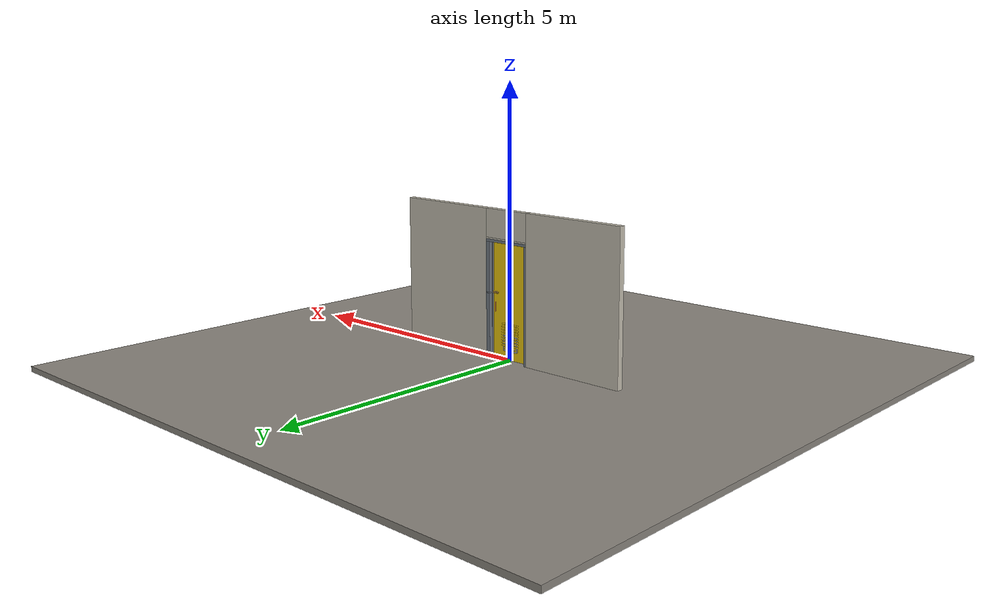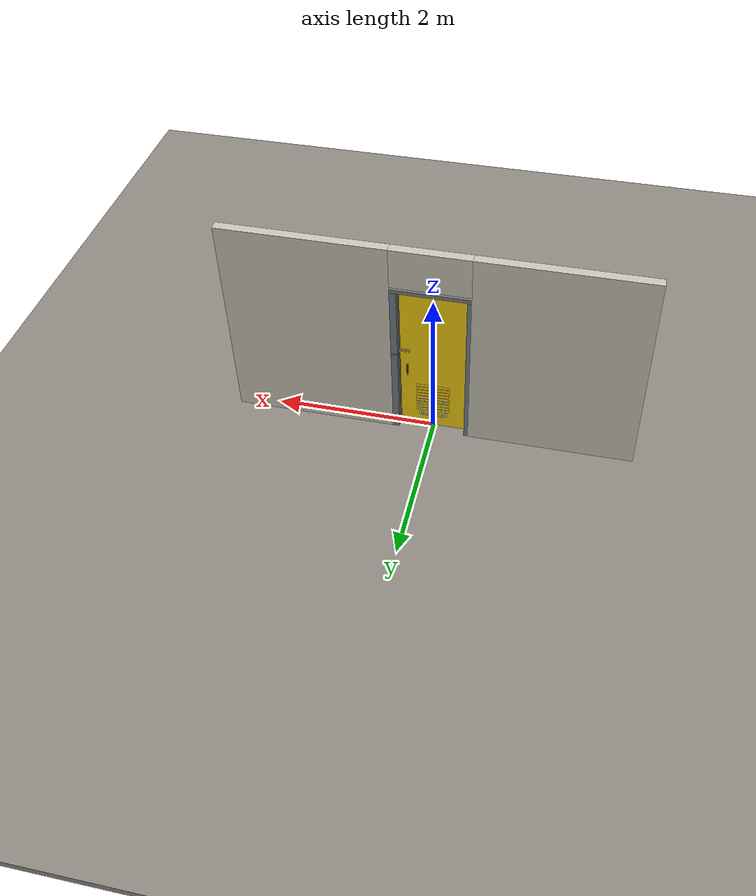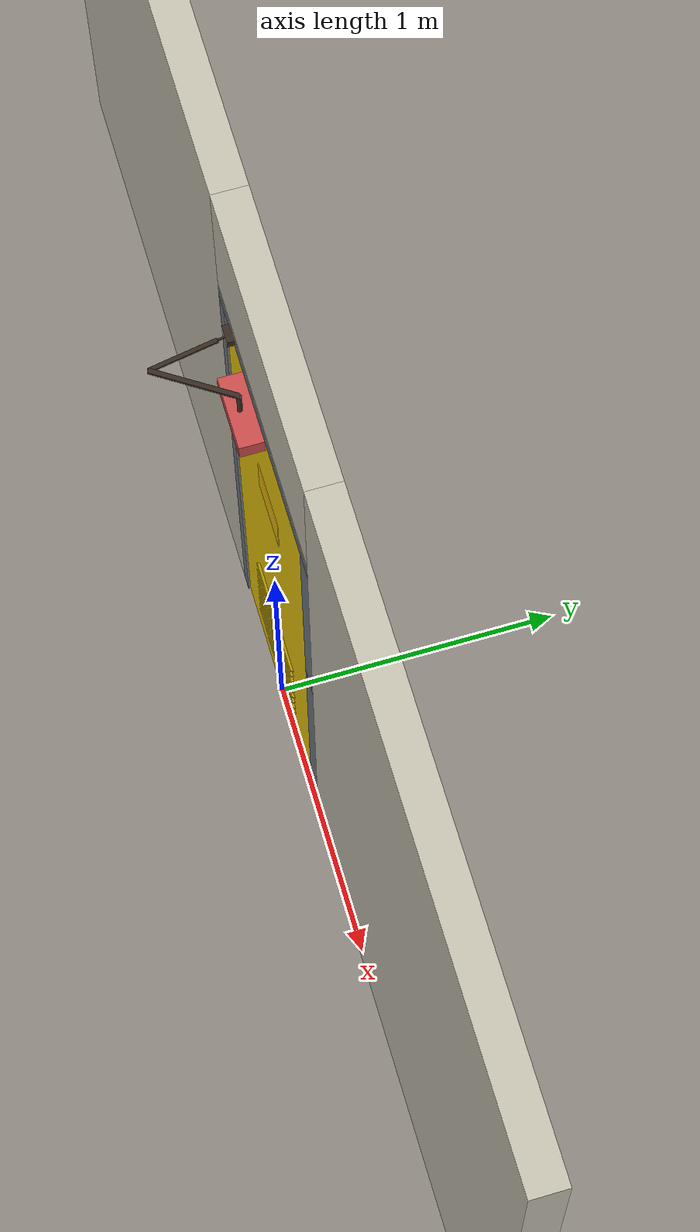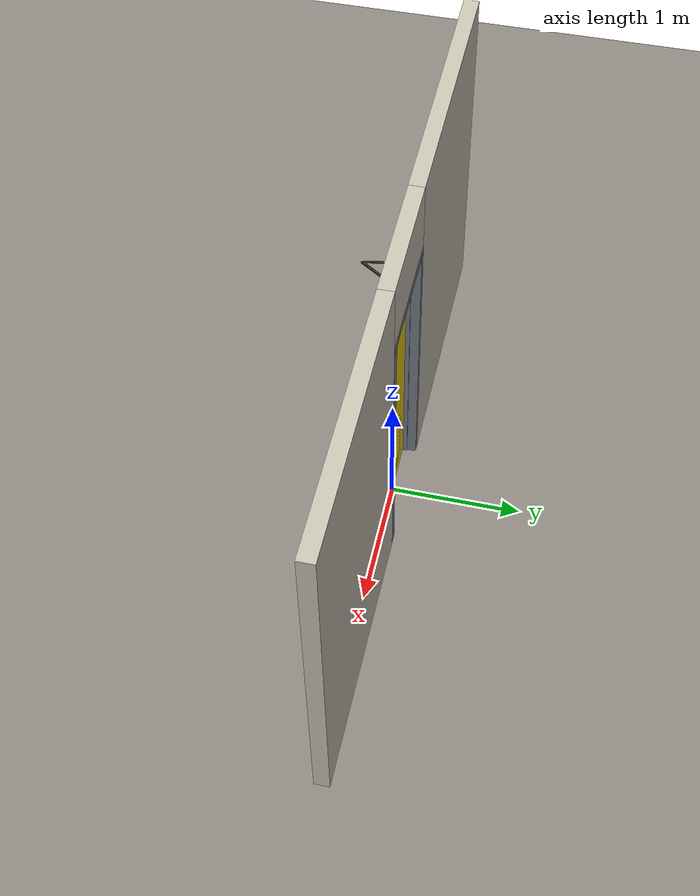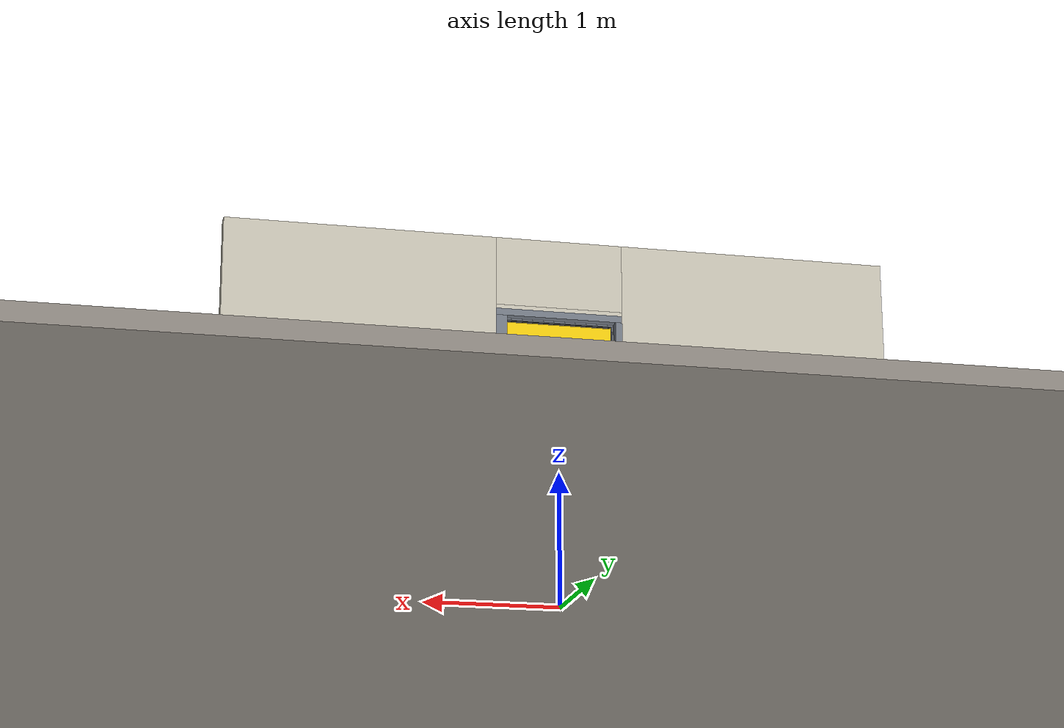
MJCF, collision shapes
<?xml version="1.0" ?>
<mujoco model="db0012_swing_single_full">
  <compiler angle="radian" meshdir="../../hardware" texturedir="../../textures" autolimits="true" inertiafromgeom="false"/>
  <option timestep="0.002" integrator="implicitfast" cone="elliptic" impratio="10" noslip_iterations="3">
    <flag multiccd="enable"/>
  </option>
  <size memory="16M"/>
  <default>
    <geom condim="4" solref="0.005 1" solimp="0.95 0.99 0.001"/>
    <joint solreflimit="0.005 1" solimplimit="0.95 0.99 0.001"/>
    <tendon solreflimit="0.005 1"/>
    <equality solref="0.002 1"/>
  </default>
  <visual>
    <headlight ambient="0.4 0.4 0.4" diffuse="0.7 0.7 0.7" specular="0.2 0.2 0.2"/>
    <quality shadowsize="4096"/>
    <map znear="0.01" zfar="60"/>
  </visual>
  <asset>
    <mesh name="closer_body_b226fdb10b" file="closer_body_b226fdb10b.obj"/>
    <mesh name="hinge_6a70328eaf" file="hinge_6a70328eaf.obj"/>
    <mesh name="hinge_jamb_2905960ffb" file="hinge_jamb_2905960ffb.obj"/>
    <mesh name="pull_1e5d69a91a" file="pull_1e5d69a91a.obj"/>
    <material name="mat_floor" rgba="0.55 0.53 0.5 1" specular="0.2" shininess="0.15" reflectance="0"/>
    <material name="mat_wall" rgba="0.78 0.76 0.7 1" specular="0.2" shininess="0.1" reflectance="0"/>
    <material name="mat_leaf" rgba="0.95 0.8 0.05 1" specular="0.23" shininess="0.44" reflectance="0.02"/>
    <material name="mat_leaf_louver" rgba="0.807 0.68 0.043 1" specular="0.2" shininess="0.4" reflectance="0"/>
    <material name="mat_hinge" rgba="0.45 0.3 0.22 1" specular="0.5" shininess="0.1" reflectance="0.2"/>
    <material name="mat_op_stainless" rgba="0.75 0.76 0.77 1" specular="0.8" shininess="0.65" reflectance="0.4"/>
    <material name="mat_op_brass" rgba="0.85 0.66 0.3 1" specular="0.8" shininess="0.75" reflectance="0.4"/>
    <material name="mat_frame" rgba="0.45 0.48 0.52 1" specular="0.32" shininess="0.6" reflectance="0.08"/>
    <material name="mat_seal" rgba="0.1 0.1 0.1 1" specular="0.2" shininess="0.1" reflectance="0"/>
    <material name="mat_closer" rgba="0.22 0.17 0.13 1" specular="0.8" shininess="0.6" reflectance="0.4"/>
    <material name="mat_vent" rgba="0.8 0.81 0.83 1" specular="0.8" shininess="0.6" reflectance="0.4"/>
    <material name="mat_placard" rgba="0.95 0.75 0.05 1" specular="0.2" shininess="0.5" reflectance="0"/>
    <texture name="skybox" type="skybox" builtin="gradient" rgb1="0.6 0.7 0.85" rgb2="0.9 0.92 0.95" width="256" height="256"/>
  </asset>
  <worldbody>
    <light name="sun" pos="1.5 -2.5 4" dir="-0.3 0.5 -0.8" directional="true" diffuse="0.8 0.8 0.8" specular="0.3 0.3 0.3" castshadow="true"/>
    <light name="fill" pos="-1.5 2.5 3" dir="0.3 -0.5 -0.7" directional="true" diffuse="0.35 0.35 0.4" castshadow="false"/>
    <camera name="robot_view" pos="0 -2.590313 1.812087" xyaxes="1 0 0 0 0.26963 0.962964" fovy="52"/>
    <camera name="far_view" pos="0 2.685312 1.812087" xyaxes="-1 0 0 0 -0.26963 0.962964" fovy="52"/>
    <camera name="iso" pos="2.004737 -2.168262 2.234138" xyaxes="0.741536 0.670913 0 -0.242917 0.268487 0.932151" fovy="46"/>
    <camera name="detail_handle" pos="0.4815 -0.863 1.245" xyaxes="0.97561 0.219512 0 -0.070934 0.315262 0.94635" fovy="38"/>
    <geom name="floor" type="box" size="6 6 0.05" pos="0 0 -0.05" material="mat_floor" group="0" contype="1" conaffinity="1" friction="0.8 0.005 0.0001" density="2400"/>
    <geom name="wall_left" type="box" size="1.02025 0.0575 1.3735" pos="-1.47975 0.0475 1.3735" material="mat_wall" group="0" contype="1" conaffinity="1" friction="0.6 0.005 0.0001" density="800"/>
    <geom name="wall_right" type="box" size="1.00525 0.0575 1.3735" pos="1.49475 0.0475 1.3735" material="mat_wall" group="0" contype="1" conaffinity="1" friction="0.6 0.005 0.0001" density="800"/>
    <geom name="wall_header" type="box" size="0.4745 0.0575 0.26" pos="0.015 0.0475 2.487" material="mat_wall" group="0" contype="1" conaffinity="1" friction="0.6 0.005 0.0001" density="800"/>
    <geom name="hinge_0_jamb" type="mesh" mesh="hinge_jamb_2905960ffb" pos="-0.4065 -0.01 0.259" material="mat_hinge" group="1" contype="0" conaffinity="0" density="7850"/>
    <geom name="hinge_1_jamb" type="mesh" mesh="hinge_jamb_2905960ffb" pos="-0.4065 -0.01 1.076" material="mat_hinge" group="1" contype="0" conaffinity="0" density="7850"/>
    <geom name="hinge_2_jamb" type="mesh" mesh="hinge_jamb_2905960ffb" pos="-0.4065 -0.01 1.963" material="mat_hinge" group="1" contype="0" conaffinity="0" density="7850"/>
    <geom name="leaf_aux_bolt_keeper_b" type="box" size="0.014 0.003 0.0005" pos="0.409 0.015 1.202" quat="-0.5 -0.5 0.5 0.5" material="mat_op_brass" group="1" contype="0" conaffinity="0" density="7800"/>
    <geom name="leaf_aux_bolt_keeper_l" type="box" size="0.003 0.01 0.0005" pos="0.409 0.026 1.215" quat="-0.5 -0.5 0.5 0.5" material="mat_op_brass" group="1" contype="0" conaffinity="0" density="7800"/>
    <geom name="leaf_aux_bolt_keeper_t" type="box" size="0.014 0.003 0.0005" pos="0.409 0.015 1.228" quat="-0.5 -0.5 0.5 0.5" material="mat_op_brass" group="1" contype="0" conaffinity="0" density="7800"/>
    <geom name="leaf_aux_bolt_keeper_r" type="box" size="0.003 0.01 0.0005" pos="0.409 0.004 1.215" quat="-0.5 -0.5 0.5 0.5" material="mat_op_brass" group="1" contype="0" conaffinity="0" density="7800"/>
    <geom name="jamb_hinge" type="box" size="0.025 0.0575 1.0735" pos="-0.4345 0.0475 1.0735" material="mat_frame" group="0" contype="1" conaffinity="1" friction="0.6 0.005 0.0001" density="300"/>
    <geom name="strike_1215_wall_n" type="box" size="0.04 0.041 0.01" pos="0.4495 0.064 1.215" material="mat_frame" group="0" contype="1" conaffinity="1" friction="0.6 0.005 0.0001" density="300"/>
    <geom name="strike_1215_wall_p" type="box" size="0.04 0.0085 0.01" pos="0.4495 -0.0015 1.215" material="mat_frame" group="0" contype="1" conaffinity="1" friction="0.6 0.005 0.0001" density="300"/>
    <geom name="strike_1215_back" type="box" size="0.019 0.008 0.01" pos="0.4705 0.015 1.215" material="mat_frame" group="0" contype="1" conaffinity="1" friction="0.6 0.005 0.0001" density="300"/>
    <geom name="jamb_strike_0" type="box" size="0.04 0.0575 0.6025" pos="0.4495 0.0475 0.6025" material="mat_frame" group="0" contype="1" conaffinity="1" friction="0.6 0.005 0.0001" density="300"/>
    <geom name="jamb_strike_1" type="box" size="0.04 0.0575 0.461" pos="0.4495 0.0475 1.686" material="mat_frame" group="0" contype="1" conaffinity="1" friction="0.6 0.005 0.0001" density="300"/>
    <geom name="jamb_head" type="box" size="0.4745 0.0575 0.025" pos="0.015 0.0475 2.172" material="mat_frame" group="0" contype="1" conaffinity="1" friction="0.6 0.005 0.0001" density="300"/>
    <geom name="head_stud" type="box" size="0.4745 0.0575 0.015" pos="0.015 0.0475 2.212" material="mat_wall" group="0" contype="1" conaffinity="1" friction="0.6 0.005 0.0001" density="500"/>
    <geom name="stop_hinge" type="box" size="0.0055 0.016 1.0735" pos="-0.404 0.0195 1.0735" material="mat_frame" group="0" contype="1" conaffinity="1" friction="0.6 0.005 0.0001" density="300"/>
    <geom name="stop_strike" type="box" size="0.0055 0.016 0.5965" pos="0.404 0.0195 0.5965" material="mat_frame" group="0" contype="1" conaffinity="1" friction="0.6 0.005 0.0001" density="300"/>
    <geom name="stop_strike_1" type="box" size="0.0055 0.016 0.455" pos="0.404 0.0195 1.692" material="mat_frame" group="0" contype="1" conaffinity="1" friction="0.6 0.005 0.0001" density="300"/>
    <geom name="stop_head" type="box" size="0.4095 0.016 0.0055" pos="0 0.0195 2.1415" material="mat_frame" group="0" contype="1" conaffinity="1" friction="0.6 0.005 0.0001" density="300"/>
    <geom name="seal_hinge" type="box" size="0.004 0.004 1.0735" pos="-0.4065 0.007 1.0735" material="mat_seal" group="1" contype="0" conaffinity="0" density="1100"/>
    <geom name="seal_strike" type="box" size="0.004 0.004 0.5965" pos="0.4065 0.007 0.5965" material="mat_seal" group="1" contype="0" conaffinity="0" density="1100"/>
    <geom name="seal_strike_1" type="box" size="0.004 0.004 0.455" pos="0.4065 0.007 1.692" material="mat_seal" group="1" contype="0" conaffinity="0" density="1100"/>
    <geom name="seal_head" type="box" size="0.3895 0.004 0.008" pos="0 0.007 2.135" material="mat_seal" group="1" contype="0" conaffinity="0" density="1100"/>
    <geom name="closer_bracket" type="box" size="0.03 0.012 0.014" pos="-0.3095 -0.022 2.177" material="mat_closer" group="1" contype="0" conaffinity="0" density="2700"/>
    <site name="approach_point" pos="0 -1.5 0" quat="1 0 0 0" size="0.05" rgba="0.2 0.9 0.2 0.5" group="4"/>
    <site name="goal_point" pos="0 1.5 0" quat="1 0 0 0" size="0.05" rgba="0.2 0.9 0.2 0.5" group="4"/>
    <site name="door_plane_center" pos="0 0 1.0735" quat="1 0 0 0" size="0.02" rgba="0.2 0.9 0.2 0.5" group="4"/>
    <body name="leaf" pos="-0.4095 0 0">
      <inertial pos="0.401395 -0.003794 1.152612" mass="86.286493" quat="-0.497424 0.490282 0.505653 0.506467" diaginertia="4.494990443 36.530342113 40.990895979"/>
      <joint name="leaf_hinge" type="hinge" axis="0 0 -1" pos="0.003 -0.01 0" limited="true" range="0 1.745329" solreflimit="0.02 1" damping="10.168374" frictionloss="30.751442" stiffness="14.763213" springref="-3.207974" armature="0.02"/>
      <geom name="leaf_slab" type="box" size="0.4065 0.003 1.067" pos="0.4095 0 1.076" material="mat_leaf" group="0" contype="1" conaffinity="1" friction="0.45 0.005 0.0001" density="1"/>
      <geom name="leaf_louver_0" type="box" size="0.20325 0.002 0.02625" pos="0.4095 0 0.284" quat="0.953717 0.300706 0 0" material="mat_leaf_louver" group="1" contype="0" conaffinity="0" density="1"/>
      <geom name="leaf_louver_1" type="box" size="0.20325 0.002 0.02625" pos="0.4095 0 0.334" quat="0.953717 0.300706 0 0" material="mat_leaf_louver" group="1" contype="0" conaffinity="0" density="1"/>
      <geom name="leaf_louver_2" type="box" size="0.20325 0.002 0.02625" pos="0.4095 0 0.384" quat="0.953717 0.300706 0 0" material="mat_leaf_louver" group="1" contype="0" conaffinity="0" density="1"/>
      <geom name="leaf_louver_3" type="box" size="0.20325 0.002 0.02625" pos="0.4095 0 0.434" quat="0.953717 0.300706 0 0" material="mat_leaf_louver" group="1" contype="0" conaffinity="0" density="1"/>
      <geom name="leaf_louver_4" type="box" size="0.20325 0.002 0.02625" pos="0.4095 0 0.484" quat="0.953717 0.300706 0 0" material="mat_leaf_louver" group="1" contype="0" conaffinity="0" density="1"/>
      <geom name="leaf_louver_5" type="box" size="0.20325 0.002 0.02625" pos="0.4095 0 0.534" quat="0.953717 0.300706 0 0" material="mat_leaf_louver" group="1" contype="0" conaffinity="0" density="1"/>
      <geom name="leaf_louver_6" type="box" size="0.20325 0.002 0.02625" pos="0.4095 0 0.584" quat="0.953717 0.300706 0 0" material="mat_leaf_louver" group="1" contype="0" conaffinity="0" density="1"/>
      <geom name="leaf_louver_7" type="box" size="0.20325 0.002 0.02625" pos="0.4095 0 0.634" quat="0.953717 0.300706 0 0" material="mat_leaf_louver" group="1" contype="0" conaffinity="0" density="1"/>
      <geom name="leaf_louver_8" type="box" size="0.20325 0.002 0.02625" pos="0.4095 0 0.684" quat="0.953717 0.300706 0 0" material="mat_leaf_louver" group="1" contype="0" conaffinity="0" density="1"/>
      <geom name="hinge_0" type="mesh" mesh="hinge_6a70328eaf" pos="0.003 -0.01 0.259" material="mat_hinge" group="1" contype="0" conaffinity="0" density="7850"/>
      <geom name="hinge_1" type="mesh" mesh="hinge_6a70328eaf" pos="0.003 -0.01 1.076" material="mat_hinge" group="1" contype="0" conaffinity="0" density="7850"/>
      <geom name="hinge_2" type="mesh" mesh="hinge_6a70328eaf" pos="0.003 -0.01 1.963" material="mat_hinge" group="1" contype="0" conaffinity="0" density="7850"/>
      <geom name="leaf_pull_n" type="mesh" mesh="pull_1e5d69a91a" pos="0.711 -0.003 0.965" quat="0.707107 0.707107 0 0" material="mat_op_stainless" group="1" contype="0" conaffinity="0" density="3000"/>
      <geom name="leaf_pull_col_n" type="capsule" size="0.0095 0.08" pos="0.711 -0.063 0.965" material="mat_op_stainless" group="3" contype="1" conaffinity="1" rgba="0.8 0.3 0.3 0.25" friction="0.7 0.01 0.0001" density="3000"/>
      <geom name="leaf_pull_p" type="mesh" mesh="pull_1e5d69a91a" pos="0.711 0.003 0.965" quat="-0.707107 0.707107 0 0" material="mat_op_stainless" group="1" contype="0" conaffinity="0" density="3000"/>
      <geom name="leaf_pull_col_p" type="capsule" size="0.0095 0.08" pos="0.711 0.063 0.965" material="mat_op_stainless" group="3" contype="1" conaffinity="1" rgba="0.8 0.3 0.3 0.25" friction="0.7 0.01 0.0001" density="3000"/>
      <geom name="leaf_aux_bolt_plate" type="box" size="0.0595 0.019 0.001" pos="0.7485 0.004 1.215" quat="0.707107 -0.707107 0 0" material="mat_op_brass" group="1" contype="0" conaffinity="0" density="7800"/>
      <geom name="leaf_aux_bolt_guide_0_leg_n" type="box" size="0.006 0.002 0.0125" pos="0.8 0.0155 1.226" quat="0.707107 -0.707107 0 0" material="mat_op_brass" group="1" contype="0" conaffinity="0" density="7800"/>
      <geom name="leaf_aux_bolt_guide_0_leg_p" type="box" size="0.006 0.002 0.0125" pos="0.8 0.0155 1.204" quat="0.707107 -0.707107 0 0" material="mat_op_brass" group="1" contype="0" conaffinity="0" density="7800"/>
      <geom name="leaf_aux_bolt_guide_0_bridge" type="box" size="0.006 0.013 0.002" pos="0.8 0.026 1.215" quat="0.707107 -0.707107 0 0" material="mat_op_brass" group="1" contype="0" conaffinity="0" density="7800"/>
      <geom name="leaf_aux_bolt_guide_1_leg_n" type="box" size="0.006 0.002 0.0125" pos="0.699 0.0155 1.226" quat="0.707107 -0.707107 0 0" material="mat_op_brass" group="1" contype="0" conaffinity="0" density="7800"/>
      <geom name="leaf_aux_bolt_guide_1_leg_p" type="box" size="0.006 0.002 0.0125" pos="0.699 0.0155 1.204" quat="0.707107 -0.707107 0 0" material="mat_op_brass" group="1" contype="0" conaffinity="0" density="7800"/>
      <geom name="leaf_aux_bolt_guide_1_bridge" type="box" size="0.006 0.013 0.002" pos="0.699 0.026 1.215" quat="0.707107 -0.707107 0 0" material="mat_op_brass" group="1" contype="0" conaffinity="0" density="7800"/>
      <geom name="closer_body" type="mesh" mesh="closer_body_b226fdb10b" pos="0.3 -0.003 2.054" quat="0.707107 0.707107 0 0" material="mat_closer" group="1" contype="0" conaffinity="0" density="2000"/>
      <geom name="closer_body_col" type="box" size="0.12 0.04 0.03" pos="0.3 -0.043 2.054" material="mat_closer" group="3" contype="1" conaffinity="1" rgba="0.8 0.3 0.3 0.25" friction="0.6 0.005 0.0001" density="2000"/>
      <geom name="closer_pinion_shaft" type="cylinder" size="0.008 0.0615" pos="0.3 -0.045 2.1155" material="mat_closer" group="1" contype="0" conaffinity="0" density="2700"/>
      <geom name="louver_vent_stile_n_l" type="box" size="0.012 0.002 0.137" pos="0.2475 -0.005 0.314" material="mat_vent" group="2" contype="0" conaffinity="0" density="2700"/>
      <geom name="louver_vent_stile_n_r" type="box" size="0.012 0.002 0.137" pos="0.5715 -0.005 0.314" material="mat_vent" group="2" contype="0" conaffinity="0" density="2700"/>
      <geom name="louver_vent_rail_n_b" type="box" size="0.15 0.002 0.012" pos="0.4095 -0.005 0.177" material="mat_vent" group="2" contype="0" conaffinity="0" density="2700"/>
      <geom name="louver_vent_rail_n_t" type="box" size="0.15 0.002 0.012" pos="0.4095 -0.005 0.451" material="mat_vent" group="2" contype="0" conaffinity="0" density="2700"/>
      <geom name="louver_vent_stile_p_l" type="box" size="0.012 0.002 0.137" pos="0.2475 0.005 0.314" material="mat_vent" group="2" contype="0" conaffinity="0" density="2700"/>
      <geom name="louver_vent_stile_p_r" type="box" size="0.012 0.002 0.137" pos="0.5715 0.005 0.314" material="mat_vent" group="2" contype="0" conaffinity="0" density="2700"/>
      <geom name="louver_vent_rail_p_b" type="box" size="0.15 0.002 0.012" pos="0.4095 0.005 0.177" material="mat_vent" group="2" contype="0" conaffinity="0" density="2700"/>
      <geom name="louver_vent_rail_p_t" type="box" size="0.15 0.002 0.012" pos="0.4095 0.005 0.451" material="mat_vent" group="2" contype="0" conaffinity="0" density="2700"/>
      <geom name="louver_vent_slat_0" type="box" size="0.15 0.0015 0.015" pos="0.4095 0 0.209833" quat="0.965926 -0.258819 0 0" material="mat_vent" group="2" contype="0" conaffinity="0" density="2700"/>
      <geom name="louver_vent_slat_1" type="box" size="0.15 0.0015 0.015" pos="0.4095 0 0.2515" quat="0.965926 -0.258819 0 0" material="mat_vent" group="2" contype="0" conaffinity="0" density="2700"/>
      <geom name="louver_vent_slat_2" type="box" size="0.15 0.0015 0.015" pos="0.4095 0 0.293167" quat="0.965926 -0.258819 0 0" material="mat_vent" group="2" contype="0" conaffinity="0" density="2700"/>
      <geom name="louver_vent_slat_3" type="box" size="0.15 0.0015 0.015" pos="0.4095 0 0.334833" quat="0.965926 -0.258819 0 0" material="mat_vent" group="2" contype="0" conaffinity="0" density="2700"/>
      <geom name="louver_vent_slat_4" type="box" size="0.15 0.0015 0.015" pos="0.4095 0 0.3765" quat="0.965926 -0.258819 0 0" material="mat_vent" group="2" contype="0" conaffinity="0" density="2700"/>
      <geom name="louver_vent_slat_5" type="box" size="0.15 0.0015 0.015" pos="0.4095 0 0.418167" quat="0.965926 -0.258819 0 0" material="mat_vent" group="2" contype="0" conaffinity="0" density="2700"/>
      <geom name="warning_placard" type="box" size="0.11 0.001 0.08" pos="0.4095 -0.004 1.6095" material="mat_placard" group="2" contype="0" conaffinity="0" density="1000"/>
      <site name="leaf_pull_grip_n" pos="0.711 -0.063 0.965" quat="1 0 0 0" size="0.012" rgba="0.2 0.9 0.2 0.5" group="4"/>
      <site name="leaf_pull_grip_p" pos="0.711 0.063 0.965" quat="1 0 0 0" size="0.012" rgba="0.2 0.9 0.2 0.5" group="4"/>
      <site name="leaf_edge_mid" pos="0.816 0 1.067" quat="1 0 0 0" size="0.02" rgba="0.2 0.9 0.2 0.5" group="4"/>
      <body name="leaf_aux_bolt" pos="0.816 0.015 1.215">
        <inertial pos="-0.068563 0.00492 0" mass="0.111784" quat="0.998595 0 0 -0.05299" diaginertia="0.000012212 0.000071985 0.000082309"/>
        <joint name="leaf_aux_bolt_slide" type="slide" axis="-1 0 0" limited="true" range="0 0.045" damping="1" frictionloss="1" armature="0.1" ref="0.045"/>
        <geom name="leaf_aux_bolt_rod" type="capsule" size="0.006 0.044" pos="-0.065 0 0" quat="0.707107 0 0.707107 0" material="mat_op_brass" group="0" contype="1" conaffinity="1" friction="0.6 0.005 0.0001" density="7850"/>
        <geom name="leaf_aux_bolt_knob" type="capsule" size="0.005 0.01" pos="-0.08 0.015 0" quat="0.707107 -0.707107 0 0" material="mat_op_brass" group="0" contype="1" conaffinity="1" friction="0.6 0.005 0.0001" density="7850"/>
        <geom name="leaf_aux_bolt_knob_end" type="sphere" size="0.00675" pos="-0.08 0.03 0" material="mat_op_brass" group="1" contype="0" conaffinity="0" density="7850"/>
        <site name="leaf_aux_bolt_grip" pos="-0.08 0.034 0" quat="1 0 0 0" size="0.012" rgba="0.2 0.9 0.2 0.5" group="4"/>
      </body>
      <body name="closer_arm_main" pos="0.3 -0.045 2.177" quat="0.472212 0 0 -0.881485">
        <inertial pos="0.14 0 0" mass="0.12096" quat="1 0 0 0" diaginertia="0.000003588 0.00079128 0.000792852"/>
        <joint name="closer_pinion" type="hinge" axis="0 0 1" limited="false" damping="0.01" armature="0.002"/>
        <geom name="closer_arm_main_geom" type="box" size="0.14 0.008 0.005" pos="0.14 0 0" material="mat_closer" group="1" contype="0" conaffinity="0" density="2700"/>
        <body name="closer_arm_fore" pos="0.28 0 0" quat="-0.371222 0 0 0.928544">
          <inertial pos="0.128088 0 0" mass="0.076531" quat="1 0 0 0" diaginertia="0.000001771 0.000437665 0.000438201"/>
          <joint name="closer_elbow" type="hinge" axis="0 0 1" limited="false" damping="0.01" armature="0.002"/>
          <geom name="closer_arm_fore_geom" type="box" size="0.1125 0.007 0.004" pos="0.1125 0 0" material="mat_closer" group="1" contype="0" conaffinity="0" density="2700"/>
          <geom name="closer_fore_neck" type="box" size="0.0175 0.003 0.003" pos="0.2425 0 0" material="mat_closer" group="1" contype="0" conaffinity="0" density="2700"/>
          <geom name="closer_fore_pivot" type="cylinder" size="0.005 0.012" pos="0.26 0 0" material="mat_closer" group="1" contype="0" conaffinity="0" density="2700"/>
        </body>
      </body>
    </body>
  </worldbody>
  <equality>
    <connect name="closer_arm_connect" body1="closer_arm_fore" body2="world" anchor="0.26 0 0" active="true"/>
  </equality>
  <contact>
    <exclude body1="closer_arm_main" body2="leaf"/>
    <exclude body1="closer_arm_fore" body2="leaf"/>
    <exclude body1="closer_arm_main" body2="closer_arm_fore"/>
  </contact>
  <sensor>
    <jointpos name="leaf_hinge_pos" joint="leaf_hinge"/>
    <jointvel name="leaf_hinge_vel" joint="leaf_hinge"/>
    <jointpos name="leaf_aux_bolt_slide_pos" joint="leaf_aux_bolt_slide"/>
    <jointvel name="leaf_aux_bolt_slide_vel" joint="leaf_aux_bolt_slide"/>
  </sensor>
</mujoco>
